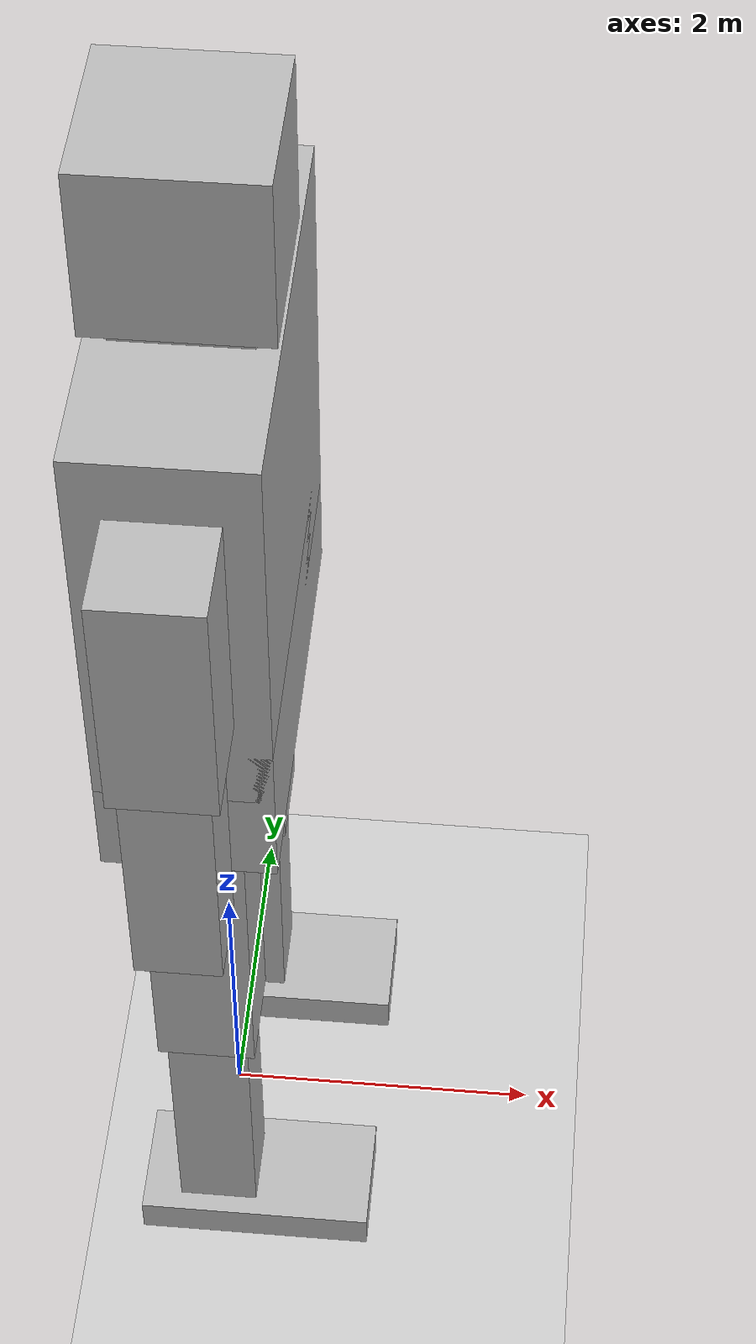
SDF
<?xml version="1.0" ?>
<sdf version="1.5">
  <world name="default">

    <!-- A global light source -->
    <include>
      <uri>model://sun</uri>
    </include>

    <!-- A ground plane -->
    <include>
      <uri>model://ground_plane</uri>
    </include>

		<model name="robot">

			<link name="RFoot">

				<pose>0.25 -0.875 0.125 0 0 0</pose>
				<inertial>
		      <mass>1.0</mass>
		      <inertia> <!-- interias are tricky to compute -->
		        <!-- http://answers.gazebosim.org/question/4372/the-inertia-matrix-explained/ -->
		        <ixx>0.083</ixx>       <!-- for a box: ixx = 0.083 * mass * (y*y + z*z) -->
		        <ixy>0.0</ixy>         <!-- for a box: ixy = 0 -->
		        <ixz>0.0</ixz>         <!-- for a box: ixz = 0 -->
		        <iyy>0.083</iyy>       <!-- for a box: iyy = 0.083 * mass * (x*x + z*z) -->
		        <iyz>0.0</iyz>         <!-- for a box: iyz = 0 -->
		        <izz>0.083</izz>       <!-- for a box: izz = 0.083 * mass * (x*x + y*y) -->
		      </inertia>
      	</inertial>
				<collision name="RFoot_collision">
					<geometry>
						<box>
							<size>1.5 0.75 0.25</size>
						</box>
					</geometry>
				</collision>
				<visual name="RFoot_visual">
					<geometry>
						<box>
							<size>1.5 0.75 0.25</size>
						</box>
					</geometry>
				</visual>

			</link>

			<link name="LFoot">

				<pose>0.25 0.875 0.125 0 0 0</pose>
				<inertial>
		      <mass>1.0</mass>
		      <inertia> <!-- interias are tricky to compute -->
		        <!-- http://answers.gazebosim.org/question/4372/the-inertia-matrix-explained/ -->
		        <ixx>0.083</ixx>       <!-- for a box: ixx = 0.083 * mass * (y*y + z*z) -->
		        <ixy>0.0</ixy>         <!-- for a box: ixy = 0 -->
		        <ixz>0.0</ixz>         <!-- for a box: ixz = 0 -->
		        <iyy>0.083</iyy>       <!-- for a box: iyy = 0.083 * mass * (x*x + z*z) -->
		        <iyz>0.0</iyz>         <!-- for a box: iyz = 0 -->
		        <izz>0.083</izz>       <!-- for a box: izz = 0.083 * mass * (x*x + y*y) -->
		      </inertia>
      	</inertial>
				<collision name="LFoot_collision">
					<geometry>
						<box>
							<size>1.5 0.75 0.25</size>
						</box>
					</geometry>
				</collision>
				<visual name="LFoot_visual">
					<geometry>
						<box>
							<size>1.5 0.75 0.25</size>
						</box>
					</geometry>
				</visual>

			</link>

			<link name="RTibia">

				<pose>0.0 -0.875 1.125 0 0 0</pose>
				<inertial>
		      <mass>1.0</mass>
		      <inertia> <!-- interias are tricky to compute -->
		        <!-- http://answers.gazebosim.org/question/4372/the-inertia-matrix-explained/ -->
		        <ixx>0.083</ixx>       <!-- for a box: ixx = 0.083 * mass * (y*y + z*z) -->
		        <ixy>0.0</ixy>         <!-- for a box: ixy = 0 -->
		        <ixz>0.0</ixz>         <!-- for a box: ixz = 0 -->
		        <iyy>0.083</iyy>       <!-- for a box: iyy = 0.083 * mass * (x*x + z*z) -->
		        <iyz>0.0</iyz>         <!-- for a box: iyz = 0 -->
		        <izz>0.083</izz>       <!-- for a box: izz = 0.083 * mass * (x*x + y*y) -->
		      </inertia>
      	</inertial>
				<collision name="RTibia_collision">
					<geometry>
						<box>
							<size>0.5 0.5 2.25</size>
						</box>
					</geometry>
				</collision>
				<visual name="RTibia_visual">
					<geometry>
						<box>
							<size>0.5 0.5 2.25</size>
						</box>
					</geometry>
				</visual>

			</link>

			<link name="LTibia">

				<pose>0.0 0.875 1.125 0 0 0</pose>
				<inertial>
		      <mass>1.0</mass>
		      <inertia> <!-- interias are tricky to compute -->
		        <!-- http://answers.gazebosim.org/question/4372/the-inertia-matrix-explained/ -->
		        <ixx>0.083</ixx>       <!-- for a box: ixx = 0.083 * mass * (y*y + z*z) -->
		        <ixy>0.0</ixy>         <!-- for a box: ixy = 0 -->
		        <ixz>0.0</ixz>         <!-- for a box: ixz = 0 -->
		        <iyy>0.083</iyy>       <!-- for a box: iyy = 0.083 * mass * (x*x + z*z) -->
		        <iyz>0.0</iyz>         <!-- for a box: iyz = 0 -->
		        <izz>0.083</izz>       <!-- for a box: izz = 0.083 * mass * (x*x + y*y) -->
		      </inertia>
      	</inertial>
				<collision name="LTibia_collision">
					<geometry>
						<box>
							<size>0.5 0.5 2.25</size>
						</box>
					</geometry>
				</collision>
				<visual name="LTibia_visual">
					<geometry>
						<box>
							<size>0.5 0.5 2.25</size>
						</box>
					</geometry>
				</visual>

			</link>

			<link name="RFemur">

				<pose>0.0 -0.875 3.125 0 0 0</pose>
				<inertial>
		      <mass>1.0</mass>
		      <inertia> <!-- interias are tricky to compute -->
		        <!-- http://answers.gazebosim.org/question/4372/the-inertia-matrix-explained/ -->
		        <ixx>0.083</ixx>       <!-- for a box: ixx = 0.083 * mass * (y*y + z*z) -->
		        <ixy>0.0</ixy>         <!-- for a box: ixy = 0 -->
		        <ixz>0.0</ixz>         <!-- for a box: ixz = 0 -->
		        <iyy>0.083</iyy>       <!-- for a box: iyy = 0.083 * mass * (x*x + z*z) -->
		        <iyz>0.0</iyz>         <!-- for a box: iyz = 0 -->
		        <izz>0.083</izz>       <!-- for a box: izz = 0.083 * mass * (x*x + y*y) -->
		      </inertia>
      	</inertial>
				<collision name="RFemur_collision">
					<geometry>
						<box>
							<size>0.6 0.6 2.25</size>
						</box>
					</geometry>
				</collision>
				<visual name="RFemur_visual">
					<geometry>
						<box>
							<size>0.6 0.6 2.25</size>
						</box>
					</geometry>
				</visual>

			</link>

			<link name="LFemur">

				<pose>0.0 0.875 3.125 0 0 0</pose>
				<inertial>
		      <mass>1.0</mass>
		      <inertia> <!-- interias are tricky to compute -->
		        <!-- http://answers.gazebosim.org/question/4372/the-inertia-matrix-explained/ -->
		        <ixx>0.083</ixx>       <!-- for a box: ixx = 0.083 * mass * (y*y + z*z) -->
		        <ixy>0.0</ixy>         <!-- for a box: ixy = 0 -->
		        <ixz>0.0</ixz>         <!-- for a box: ixz = 0 -->
		        <iyy>0.083</iyy>       <!-- for a box: iyy = 0.083 * mass * (x*x + z*z) -->
		        <iyz>0.0</iyz>         <!-- for a box: iyz = 0 -->
		        <izz>0.083</izz>       <!-- for a box: izz = 0.083 * mass * (x*x + y*y) -->
		      </inertia>
      	</inertial>
				<collision name="LFemur_collision">
					<geometry>
						<box>
							<size>0.6 0.6 2.25</size>
						</box>
					</geometry>
				</collision>
				<visual name="LFemur_visual">
					<geometry>
						<box>
							<size>0.6 0.6 2.25</size>
						</box>
					</geometry>
				</visual>

			</link>

			<link name="Abdomen">

				<pose>0.0 0.0 4.5 0 0 0</pose>
				<inertial>
		      <mass>1.0</mass>
		      <inertia> <!-- interias are tricky to compute -->
		        <!-- http://answers.gazebosim.org/question/4372/the-inertia-matrix-explained/ -->
		        <ixx>0.083</ixx>       <!-- for a box: ixx = 0.083 * mass * (y*y + z*z) -->
		        <ixy>0.0</ixy>         <!-- for a box: ixy = 0 -->
		        <ixz>0.0</ixz>         <!-- for a box: ixz = 0 -->
		        <iyy>0.083</iyy>       <!-- for a box: iyy = 0.083 * mass * (x*x + z*z) -->
		        <iyz>0.0</iyz>         <!-- for a box: iyz = 0 -->
		        <izz>0.083</izz>       <!-- for a box: izz = 0.083 * mass * (x*x + y*y) -->
		      </inertia>
      	</inertial>
				<collision name="Abdomen_collision">
					<geometry>
						<box>
							<size>1.0 2.5 1.0</size>
						</box>
					</geometry>
				</collision>
				<visual name="Abdomen_visual">
					<geometry>
						<box>
							<size>1.0 2.5 1.0</size>
						</box>
					</geometry>
				</visual>

			</link>

			<link name="Torso">

				<pose>0.0 0.0 5.875 0 0 0</pose>
				<inertial>
		      <mass>1.0</mass>
		      <inertia> <!-- interias are tricky to compute -->
		        <!-- http://answers.gazebosim.org/question/4372/the-inertia-matrix-explained/ -->
		        <ixx>0.083</ixx>       <!-- for a box: ixx = 0.083 * mass * (y*y + z*z) -->
		        <ixy>0.0</ixy>         <!-- for a box: ixy = 0 -->
		        <ixz>0.0</ixz>         <!-- for a box: ixz = 0 -->
		        <iyy>0.083</iyy>       <!-- for a box: iyy = 0.083 * mass * (x*x + z*z) -->
		        <iyz>0.0</iyz>         <!-- for a box: iyz = 0 -->
		        <izz>0.083</izz>       <!-- for a box: izz = 0.083 * mass * (x*x + y*y) -->
		      </inertia>
      	</inertial>
				<collision name="Torso_collision">
					<geometry>
						<box>
							<size>1.0 2.5 2.5</size>
						</box>
					</geometry>
				</collision>
				<visual name="Torso_visual">
					<geometry>
						<box>
							<size>1.0 2.5 2.5</size>
						</box>
					</geometry>
				</visual>

			</link>

			<link name="Neck">

				<pose>0.0 0.0 7.25 0 0 0</pose>
				<inertial>
		      <mass>1.0</mass>
		      <inertia> <!-- interias are tricky to compute -->
		        <!-- http://answers.gazebosim.org/question/4372/the-inertia-matrix-explained/ -->
		        <ixx>0.083</ixx>       <!-- for a box: ixx = 0.083 * mass * (y*y + z*z) -->
		        <ixy>0.0</ixy>         <!-- for a box: ixy = 0 -->
		        <ixz>0.0</ixz>         <!-- for a box: ixz = 0 -->
		        <iyy>0.083</iyy>       <!-- for a box: iyy = 0.083 * mass * (x*x + z*z) -->
		        <iyz>0.0</iyz>         <!-- for a box: iyz = 0 -->
		        <izz>0.083</izz>       <!-- for a box: izz = 0.083 * mass * (x*x + y*y) -->
		      </inertia>
      	</inertial>
				<collision name="Neck_collision">
					<geometry>
						<box>
							<size>0.75 0.75 0.5</size>
						</box>
					</geometry>
				</collision>
				<visual name="Neck_visual">
					<geometry>
						<box>
							<size>0.75 0.75 0.5</size>
						</box>
					</geometry>
				</visual>

			</link>

			<link name="Head">

				<pose>0.0 0.0 7.75 0 0 0</pose>
				<inertial>
		      <mass>1.0</mass>
		      <inertia> <!-- interias are tricky to compute -->
		        <!-- http://answers.gazebosim.org/question/4372/the-inertia-matrix-explained/ -->
		        <ixx>0.083</ixx>       <!-- for a box: ixx = 0.083 * mass * (y*y + z*z) -->
		        <ixy>0.0</ixy>         <!-- for a box: ixy = 0 -->
		        <ixz>0.0</ixz>         <!-- for a box: ixz = 0 -->
		        <iyy>0.083</iyy>       <!-- for a box: iyy = 0.083 * mass * (x*x + z*z) -->
		        <iyz>0.0</iyz>         <!-- for a box: iyz = 0 -->
		        <izz>0.083</izz>       <!-- for a box: izz = 0.083 * mass * (x*x + y*y) -->
		      </inertia>
      	</inertial>
				<collision name="Head_collision">
					<geometry>
						<box>
							<size>1.0 1.0 1.0</size>
						</box>
					</geometry>
				</collision>
				<visual name="Head_visual">
					<geometry>
						<box>
							<size>1.0 1.0 1.0</size>
						</box>
					</geometry>
				</visual>

			</link>

			<joint type="revolute" name="joint">
				<pose>0 0 6.875 0 0 0</pose>
				<parent>Neck</parent>
				<child>Head</child>
				<axis>
					<xyz>1 0 0</xyz>
					<limit>
						<lower>-10000000000000000</lower>
						<upper>10000000000000000</upper>
					</limit>
				</axis>
			</joint>

			<link name="RHumerus">

				<pose>0.0 -1.55 6.0 0 0 0</pose>
				<inertial>
		      <mass>1.0</mass>
		      <inertia> <!-- interias are tricky to compute -->
		        <!-- http://answers.gazebosim.org/question/4372/the-inertia-matrix-explained/ -->
		        <ixx>0.083</ixx>       <!-- for a box: ixx = 0.083 * mass * (y*y + z*z) -->
		        <ixy>0.0</ixy>         <!-- for a box: ixy = 0 -->
		        <ixz>0.0</ixz>         <!-- for a box: ixz = 0 -->
		        <iyy>0.083</iyy>       <!-- for a box: iyy = 0.083 * mass * (x*x + z*z) -->
		        <iyz>0.0</iyz>         <!-- for a box: iyz = 0 -->
		        <izz>0.083</izz>       <!-- for a box: izz = 0.083 * mass * (x*x + y*y) -->
		      </inertia>
      	</inertial>
				<collision name="RHumerus_collision">
					<geometry>
						<box>
							<size>0.6 0.6 1.5</size>
						</box>
					</geometry>
				</collision>
				<visual name="RHumerus_visual">
					<geometry>
						<box>
							<size>0.6 0.6 1.5</size>
						</box>
					</geometry>
				</visual>

			</link>

			<link name="LHumerus">

				<pose>0.0 1.55 6.0 0 0 0</pose>
				<inertial>
		      <mass>1.0</mass>
		      <inertia> <!-- interias are tricky to compute -->
		        <!-- http://answers.gazebosim.org/question/4372/the-inertia-matrix-explained/ -->
		        <ixx>0.083</ixx>       <!-- for a box: ixx = 0.083 * mass * (y*y + z*z) -->
		        <ixy>0.0</ixy>         <!-- for a box: ixy = 0 -->
		        <ixz>0.0</ixz>         <!-- for a box: ixz = 0 -->
		        <iyy>0.083</iyy>       <!-- for a box: iyy = 0.083 * mass * (x*x + z*z) -->
		        <iyz>0.0</iyz>         <!-- for a box: iyz = 0 -->
		        <izz>0.083</izz>       <!-- for a box: izz = 0.083 * mass * (x*x + y*y) -->
		      </inertia>
      	</inertial>
				<collision name="LHumerus_collision">
					<geometry>
						<box>
							<size>0.6 0.6 1.5</size>
						</box>
					</geometry>
				</collision>
				<visual name="LHumerus_visual">
					<geometry>
						<box>
							<size>0.6 0.6 1.5</size>
						</box>
					</geometry>
				</visual>

			</link>

			<link name="RForearm">

				<pose>0.0 -1.55 4.5 0 0 0</pose>
				<inertial>
		      <mass>1.0</mass>
		      <inertia> <!-- interias are tricky to compute -->
		        <!-- http://answers.gazebosim.org/question/4372/the-inertia-matrix-explained/ -->
		        <ixx>0.083</ixx>       <!-- for a box: ixx = 0.083 * mass * (y*y + z*z) -->
		        <ixy>0.0</ixy>         <!-- for a box: ixy = 0 -->
		        <ixz>0.0</ixz>         <!-- for a box: ixz = 0 -->
		        <iyy>0.083</iyy>       <!-- for a box: iyy = 0.083 * mass * (x*x + z*z) -->
		        <iyz>0.0</iyz>         <!-- for a box: iyz = 0 -->
		        <izz>0.083</izz>       <!-- for a box: izz = 0.083 * mass * (x*x + y*y) -->
		      </inertia>
      	</inertial>
				<collision name="RForearm_collision">
					<geometry>
						<box>
							<size>0.5 0.5 1.5</size>
						</box>
					</geometry>
				</collision>
				<visual name="RHumerus_visual">
					<geometry>
						<box>
							<size>0.5 0.5 1.5</size>
						</box>
					</geometry>
				</visual>

			</link>

			<link name="LForearm">

				<pose>0.0 1.55 4.5 0 0 0</pose>
				<inertial>
		      <mass>1.0</mass>
		      <inertia> <!-- interias are tricky to compute -->
		        <!-- http://answers.gazebosim.org/question/4372/the-inertia-matrix-explained/ -->
		        <ixx>0.083</ixx>       <!-- for a box: ixx = 0.083 * mass * (y*y + z*z) -->
		        <ixy>0.0</ixy>         <!-- for a box: ixy = 0 -->
		        <ixz>0.0</ixz>         <!-- for a box: ixz = 0 -->
		        <iyy>0.083</iyy>       <!-- for a box: iyy = 0.083 * mass * (x*x + z*z) -->
		        <iyz>0.0</iyz>         <!-- for a box: iyz = 0 -->
		        <izz>0.083</izz>       <!-- for a box: izz = 0.083 * mass * (x*x + y*y) -->
		      </inertia>
      	</inertial>
				<collision name="LForearm_collision">
					<geometry>
						<box>
							<size>0.5 0.5 1.5</size>
						</box>
					</geometry>
				</collision>
				<visual name="LHumerus_visual">
					<geometry>
						<box>
							<size>0.5 0.5 1.5</size>
						</box>
					</geometry>
				</visual>

			</link>

		</model>

  </world>
</sdf>
